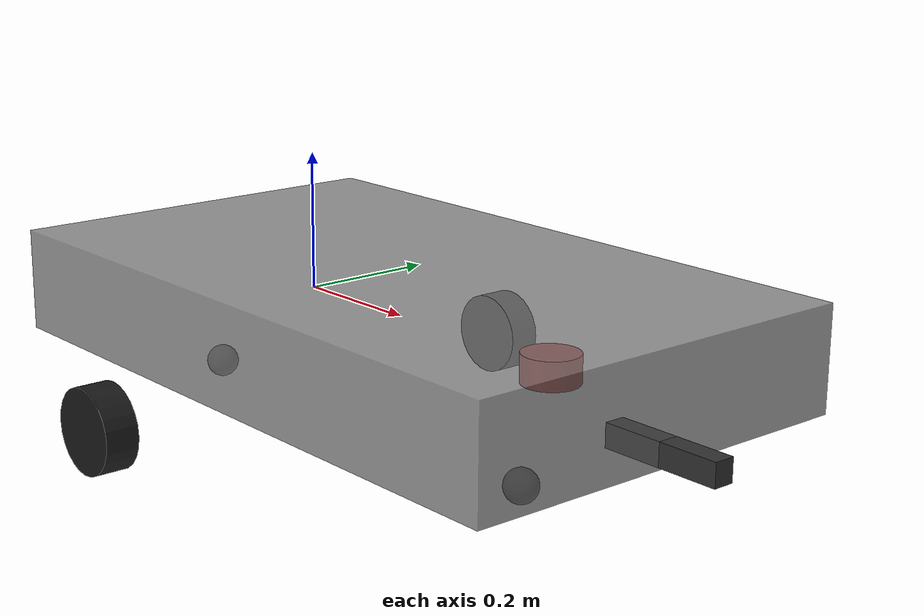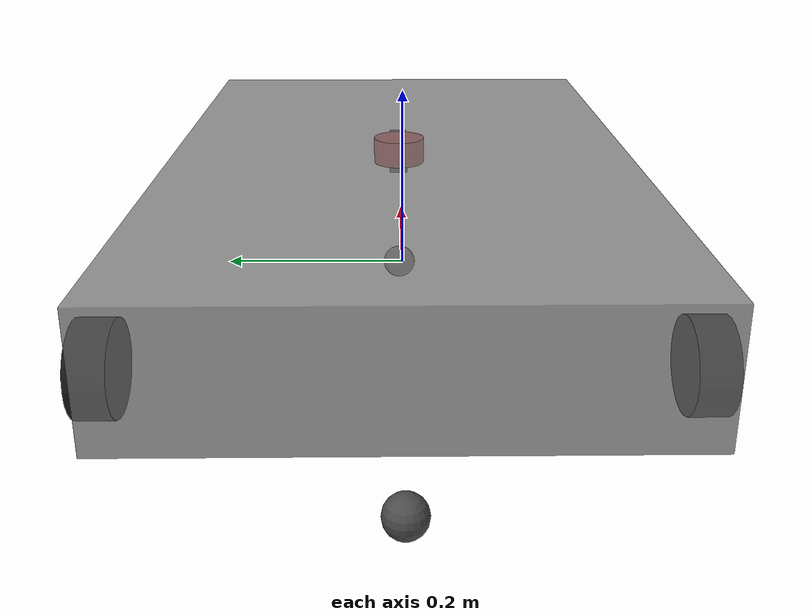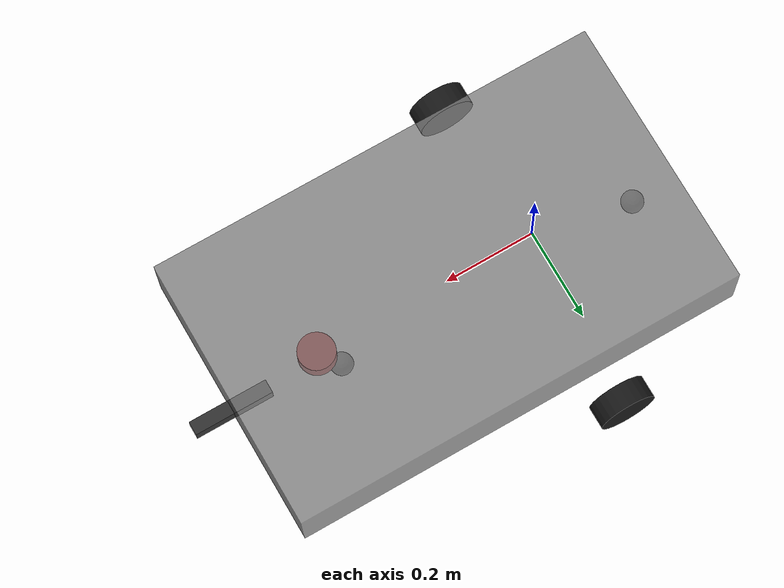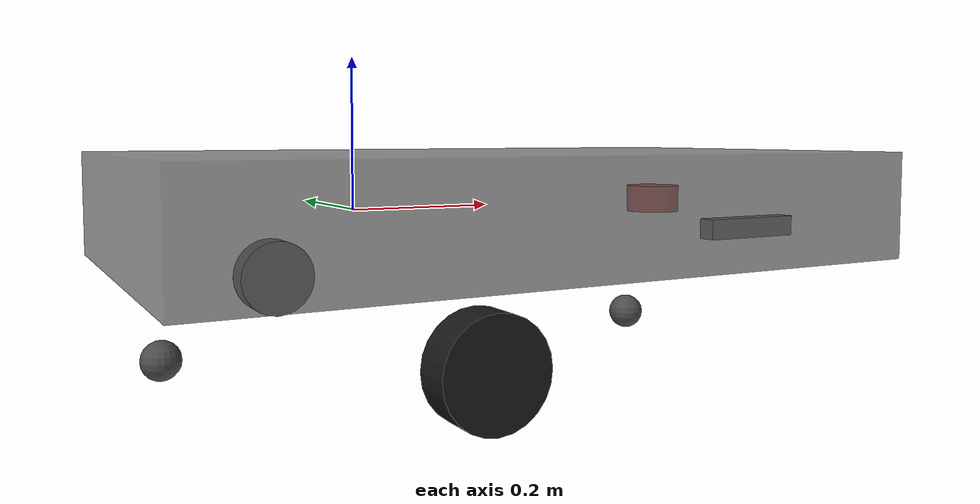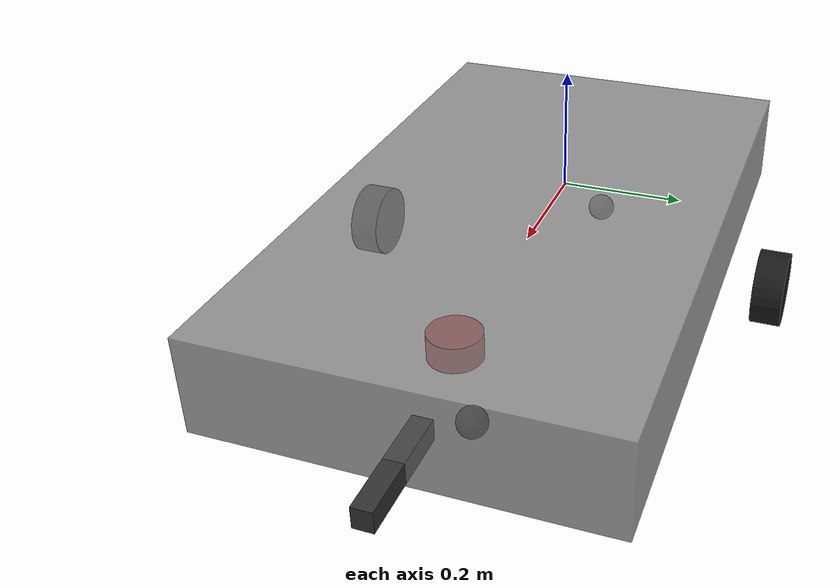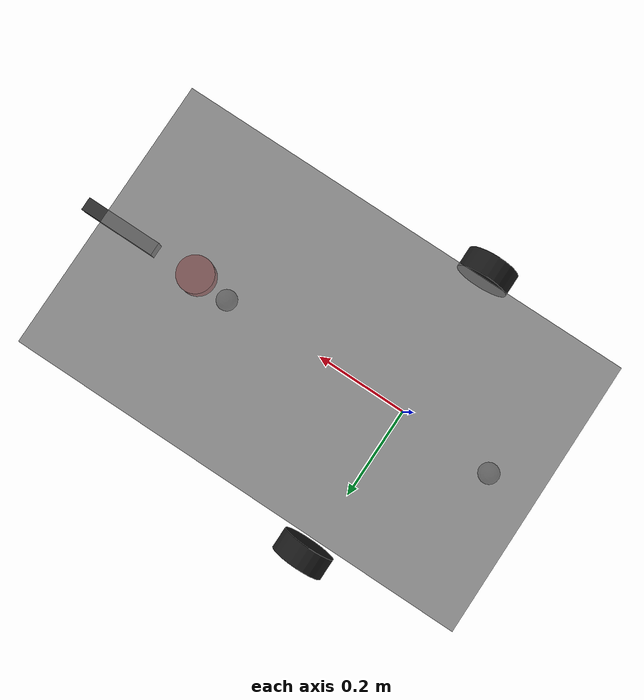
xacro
<?xml version="1.0"?>
<robot xmlns:xacro="http://www.ros.org/wiki/xacro" name="agv">

  <!-- Measured parameters (defaults from robot_params.yaml, 2026-03-18) -->
  <xacro:arg name="wheel_radius"  default="0.0625"/>
  <xacro:arg name="left_wheel_y"  default="0.3675"/>
  <xacro:arg name="right_wheel_y" default="-0.3675"/>
  <xacro:arg name="wheel_z"       default="-0.1375"/>
  <xacro:arg name="wheel_width"   default="0.05"/>

  <!-- Include components -->
  <xacro:include filename="$(find agv_sim_description)/urdf/agv_base_sim.xacro"/>
  <xacro:include filename="$(find agv_sim_description)/urdf/wheel_sim.xacro"/>
  <xacro:include filename="$(find agv_sim_description)/urdf/sensors_sim.xacro"/>

  <!-- Left wheel -->
  <xacro:wheel
    name="left"
    x="0"
    y="$(arg left_wheel_y)"
    z="$(arg wheel_z)"
    radius="$(arg wheel_radius)"
    width="$(arg wheel_width)"/>

  <!-- Right wheel -->
  <xacro:wheel
    name="right"
    x="0"
    y="$(arg right_wheel_y)"
    z="$(arg wheel_z)"
    radius="$(arg wheel_radius)"
    width="$(arg wheel_width)"/>

  <!--  Gz Harmonic Diff-Drive Plugin                         -->
  <gazebo>
    <plugin filename="gz-sim-diff-drive-system" name="gz::sim::systems::DiffDrive">
      <!-- Joints -->
      <left_joint>left_wheel_joint</left_joint>
      <right_joint>right_wheel_joint</right_joint>

      <!-- Kinematics -->
      <wheel_separation>0.735</wheel_separation>
      <wheel_radius>0.0625</wheel_radius>

      <!-- Topics (Gz Transport — bridged to ROS via ros_gz_bridge) -->
      <topic>/agv/shaped_cmd_vel</topic>
      <odom_topic>/agv/wheel_odom</odom_topic>
      <tf_topic>/agv/tf</tf_topic>

      <!-- Frames -->
      <frame_id>odom</frame_id>
      <child_frame_id>base_link</child_frame_id>

      <!-- Rate -->
      <odom_publish_frequency>50</odom_publish_frequency>
    </plugin>
  </gazebo>

  <!--  Joint State Publisher (for wheel TF via robot_state_publisher) -->
  <gazebo>
    <plugin filename="gz-sim-joint-state-publisher-system" name="gz::sim::systems::JointStatePublisher">
      <topic>/agv/joint_states</topic>
    </plugin>
  </gazebo>

</robot>

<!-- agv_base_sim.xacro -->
<robot xmlns:xacro="http://www.ros.org/wiki/xacro">

  <!-- Chassis visual approximation — dimensions from robot_params.yaml -->
  <xacro:property name="chassis_length" value="1.0"/>
  <xacro:property name="chassis_width" value="0.6"/>
  <xacro:property name="chassis_height" value="0.15"/>
  <xacro:property name="chassis_mass" value="30.0"/>
  <xacro:property name="chassis_visual_x_offset" value="0.2"/>

  <link name="base_link">
    <visual>
      <origin xyz="${chassis_visual_x_offset} 0 0" rpy="0 0 0"/>
      <geometry>
        <box size="${chassis_length} ${chassis_width} ${chassis_height}"/>
      </geometry>
      <material name="chassis_grey">
        <color rgba="0.5 0.5 0.5 0.8"/>
      </material>
    </visual>
    <collision>
      <origin xyz="${chassis_visual_x_offset} 0 0" rpy="0 0 0"/>
      <geometry>
        <box size="${chassis_length} ${chassis_width} ${chassis_height}"/>
      </geometry>
    </collision>
    <inertial>
      <mass value="${chassis_mass}"/>
      <origin xyz="${chassis_visual_x_offset} 0 0"/>
      <inertia ixx="${(1.0/12.0)*chassis_mass*(chassis_width*chassis_width + chassis_height*chassis_height)}"
               ixy="0" ixz="0"
               iyy="${(1.0/12.0)*chassis_mass*(chassis_length*chassis_length + chassis_height*chassis_height)}"
               iyz="0"
               izz="${(1.0/12.0)*chassis_mass*(chassis_length*chassis_length + chassis_width*chassis_width)}"/>
    </inertial>
  </link>

  <!-- Base footprint at ground level (for Nav2 costmap) -->
  <link name="base_footprint"/>

  <joint name="base_footprint_joint" type="fixed">
    <parent link="base_link"/>
    <child link="base_footprint"/>
    <origin xyz="0 0 -0.200" rpy="0 0 0"/>
  </joint>

  <!-- Front caster for stability in simulation -->
  <link name="front_caster">
    <visual>
      <geometry>
        <sphere radius="0.025"/>
      </geometry>
      <material name="caster_grey">
        <color rgba="0.3 0.3 0.3 1.0"/>
      </material>
    </visual>
    <collision>
      <geometry>
        <sphere radius="0.025"/>
      </geometry>
    </collision>
    <inertial>
      <mass value="0.5"/>
      <inertia ixx="0.0001" ixy="0" ixz="0" iyy="0.0001" iyz="0" izz="0.0001"/>
    </inertial>
  </link>

  <joint name="front_caster_joint" type="fixed">
    <parent link="base_link"/>
    <child link="front_caster"/>
    <origin xyz="0.45 0 -0.175" rpy="0 0 0"/>
  </joint>

  <!-- Rear caster for stability in simulation -->
  <link name="rear_caster">
    <visual>
      <geometry>
        <sphere radius="0.025"/>
      </geometry>
      <material name="caster_grey">
        <color rgba="0.3 0.3 0.3 1.0"/>
      </material>
    </visual>
    <collision>
      <geometry>
        <sphere radius="0.025"/>
      </geometry>
    </collision>
    <inertial>
      <mass value="0.5"/>
      <inertia ixx="0.0001" ixy="0" ixz="0" iyy="0.0001" iyz="0" izz="0.0001"/>
    </inertial>
  </link>

  <joint name="rear_caster_joint" type="fixed">
    <parent link="base_link"/>
    <child link="rear_caster"/>
    <origin xyz="-0.25 0 -0.175" rpy="0 0 0"/>
  </joint>

  <!-- Gz friction for casters (low friction to simulate free-rolling) -->
  <gazebo reference="front_caster">
    <mu1>0.001</mu1>
    <mu2>0.001</mu2>
    <visual>
      <material>
        <ambient>0.2 0.2 0.2 1</ambient>
        <diffuse>0.3 0.3 0.3 1</diffuse>
        <specular>0.15 0.15 0.15 1</specular>
        <pbr><metal><metalness>0.3</metalness><roughness>0.6</roughness></metal></pbr>
      </material>
    </visual>
  </gazebo>

  <gazebo reference="rear_caster">
    <mu1>0.001</mu1>
    <mu2>0.001</mu2>
    <visual>
      <material>
        <ambient>0.2 0.2 0.2 1</ambient>
        <diffuse>0.3 0.3 0.3 1</diffuse>
        <specular>0.15 0.15 0.15 1</specular>
        <pbr><metal><metalness>0.3</metalness><roughness>0.6</roughness></metal></pbr>
      </material>
    </visual>
  </gazebo>

  <gazebo reference="base_link">
    <visual>
      <material>
        <ambient>0.3 0.32 0.35 1</ambient>
        <diffuse>0.4 0.42 0.45 1</diffuse>
        <specular>0.3 0.3 0.3 1</specular>
        <pbr><metal><metalness>0.4</metalness><roughness>0.5</roughness></metal></pbr>
      </material>
    </visual>
  </gazebo>

</robot>

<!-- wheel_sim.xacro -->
<robot xmlns:xacro="http://www.ros.org/wiki/xacro">

  <xacro:macro name="wheel" params="name x y z radius width">
    <link name="${name}_wheel">
      <visual>
        <geometry>
          <cylinder radius="${radius}" length="${width}"/>
        </geometry>
        <material name="wheel_black">
          <color rgba="0.1 0.1 0.1 1.0"/>
        </material>
      </visual>
      <collision>
        <geometry>
          <cylinder radius="${radius}" length="${width}"/>
        </geometry>
      </collision>
      <inertial>
        <mass value="2.0"/>
        <inertia ixx="${(1.0/12.0)*2.0*(3.0*radius*radius + width*width)}"
                 ixy="0" ixz="0"
                 iyy="${(1.0/12.0)*2.0*(3.0*radius*radius + width*width)}"
                 iyz="0"
                 izz="${0.5*2.0*radius*radius}"/>
      </inertial>
    </link>

    <joint name="${name}_wheel_joint" type="continuous">
      <parent link="base_link"/>
      <child link="${name}_wheel"/>
      <origin xyz="${x} ${y} ${z}" rpy="${-pi/2} 0 0"/>
      <axis xyz="0 0 1"/>
    </joint>

    <gazebo reference="${name}_wheel">
      <mu1>1.0</mu1>
      <mu2>1.0</mu2>
      <kp>1000000.0</kp>
      <kd>100.0</kd>
    </gazebo>
  </xacro:macro>

</robot>

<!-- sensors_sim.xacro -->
<robot xmlns:xacro="http://www.ros.org/wiki/xacro">

  <!--  ZED 2i Stereo Camera — TF chain matching real ZED SDK -->

  <!-- ZED camera body link (175mm x 30mm x 33mm) -->
  <link name="zed_camera_link">
    <visual>
      <geometry>
        <box size="0.175 0.030 0.033"/>
      </geometry>
      <material name="zed_dark_grey">
        <color rgba="0.2 0.2 0.2 1.0"/>
      </material>
    </visual>
    <collision>
      <geometry>
        <box size="0.175 0.030 0.033"/>
      </geometry>
    </collision>
    <inertial>
      <mass value="0.16"/>
      <inertia ixx="0.00005" ixy="0" ixz="0" iyy="0.00005" iyz="0" izz="0.00005"/>
    </inertial>
  </link>

  <joint name="zed_camera_joint" type="fixed">
    <parent link="base_link"/>
    <child link="zed_camera_link"/>
    <origin xyz="0.7 0.0 -0.055" rpy="0 0 0"/>
  </joint>

  <!-- Optical center between lenses (identity transform from camera body) -->
  <link name="zed_camera_center">
    <inertial>
      <mass value="0.001"/>
      <inertia ixx="0.000001" ixy="0" ixz="0" iyy="0.000001" iyz="0" izz="0.000001"/>
    </inertial>
  </link>

  <joint name="zed_camera_center_joint" type="fixed">
    <parent link="zed_camera_link"/>
    <child link="zed_camera_center"/>
    <origin xyz="0 0 0" rpy="0 0 0"/>
  </joint>

  <!-- Left camera frame (+0.06m Y = half of 120mm baseline) -->
  <link name="zed_left_camera_frame">
    <inertial>
      <mass value="0.001"/>
      <inertia ixx="0.000001" ixy="0" ixz="0" iyy="0.000001" iyz="0" izz="0.000001"/>
    </inertial>
  </link>

  <joint name="zed_left_camera_joint" type="fixed">
    <parent link="zed_camera_link"/>
    <child link="zed_left_camera_frame"/>
    <origin xyz="0.0 0.06 0.0" rpy="0 0 0"/>
  </joint>

  <!-- Left camera optical frame (rotated for optical convention: Z forward, X right, Y down) -->
  <link name="zed_left_camera_optical_frame">
    <inertial>
      <mass value="0.001"/>
      <inertia ixx="0.000001" ixy="0" ixz="0" iyy="0.000001" iyz="0" izz="0.000001"/>
    </inertial>
  </link>

  <joint name="zed_left_camera_optical_joint" type="fixed">
    <parent link="zed_left_camera_frame"/>
    <child link="zed_left_camera_optical_frame"/>
    <!-- Rotate -90 deg around Z then -90 deg around X for optical convention -->
    <origin xyz="0 0 0" rpy="${-pi/2} 0 ${-pi/2}"/>
  </joint>

  <!-- Right camera frame (-0.06m Y = half of 120mm baseline) -->
  <link name="zed_right_camera_frame">
    <inertial>
      <mass value="0.001"/>
      <inertia ixx="0.000001" ixy="0" ixz="0" iyy="0.000001" iyz="0" izz="0.000001"/>
    </inertial>
  </link>

  <joint name="zed_right_camera_joint" type="fixed">
    <parent link="zed_camera_link"/>
    <child link="zed_right_camera_frame"/>
    <origin xyz="0.0 -0.06 0.0" rpy="0 0 0"/>
  </joint>

  <!-- Right camera optical frame -->
  <link name="zed_right_camera_optical_frame">
    <inertial>
      <mass value="0.001"/>
      <inertia ixx="0.000001" ixy="0" ixz="0" iyy="0.000001" iyz="0" izz="0.000001"/>
    </inertial>
  </link>

  <joint name="zed_right_camera_optical_joint" type="fixed">
    <parent link="zed_right_camera_frame"/>
    <child link="zed_right_camera_optical_frame"/>
    <origin xyz="0 0 0" rpy="${-pi/2} 0 ${-pi/2}"/>
  </joint>

  <!-- IMU link (co-located with camera body) -->
  <link name="imu_link">
    <visual>
      <geometry>
        <box size="0.02 0.02 0.02"/>
      </geometry>
      <material name="imu_blue">
        <color rgba="0.0 0.0 0.8 1.0"/>
      </material>
    </visual>
    <inertial>
      <mass value="0.01"/>
      <inertia ixx="0.000001" ixy="0" ixz="0" iyy="0.000001" iyz="0" izz="0.000001"/>
    </inertial>
  </link>

  <joint name="imu_joint" type="fixed">
    <parent link="zed_camera_link"/>
    <child link="imu_link"/>
    <origin xyz="0 0 0" rpy="0 0 0"/>
  </joint>

  <!--  Left Camera Sensor (RGB + Depth + PointCloud)          -->
  <!--  Gz Transport topics bridged to ROS via ros_gz_bridge   -->
  <gazebo reference="zed_left_camera_frame">
    <sensor type="depth_camera" name="zed_left_depth">
      <always_on>true</always_on>
      <update_rate>30</update_rate>
      <topic>/zed_left</topic>
      <gz_frame_id>zed_left_camera_optical_frame</gz_frame_id>
      <camera>
        <horizontal_fov>1.9199</horizontal_fov>
        <image>
          <width>1280</width>
          <height>720</height>
          <format>R8G8B8</format>
        </image>
        <clip>
          <near>0.3</near>
          <far>20.0</far>
        </clip>
        <noise>
          <type>gaussian</type>
          <mean>0.0</mean>
          <stddev>0.007</stddev>
        </noise>
      </camera>
    </sensor>
  </gazebo>

  <!--  Right Camera Sensor (RGB only)                         -->
  <gazebo reference="zed_right_camera_frame">
    <sensor type="camera" name="zed_right_camera">
      <always_on>true</always_on>
      <update_rate>30</update_rate>
      <topic>/zed_right</topic>
      <gz_frame_id>zed_right_camera_optical_frame</gz_frame_id>
      <camera>
        <horizontal_fov>1.9199</horizontal_fov>
        <image>
          <width>1280</width>
          <height>720</height>
          <format>R8G8B8</format>
        </image>
        <clip>
          <near>0.3</near>
          <far>20.0</far>
        </clip>
        <noise>
          <type>gaussian</type>
          <mean>0.0</mean>
          <stddev>0.007</stddev>
        </noise>
      </camera>
    </sensor>
  </gazebo>

  <!--  ZED 2i IMU — 400Hz, datasheet noise values             -->
  <gazebo reference="imu_link">
    <sensor name="zed_imu" type="imu">
      <always_on>true</always_on>
      <update_rate>400</update_rate>
      <topic>/zed_imu</topic>
      <gz_frame_id>imu_link</gz_frame_id>
      <imu>
        <angular_velocity>
          <x><noise type="gaussian"><mean>0.0</mean><stddev>0.00279</stddev></noise></x>
          <y><noise type="gaussian"><mean>0.0</mean><stddev>0.00279</stddev></noise></y>
          <z><noise type="gaussian"><mean>0.0</mean><stddev>0.00279</stddev></noise></z>
        </angular_velocity>
        <linear_acceleration>
          <x><noise type="gaussian"><mean>0.0</mean><stddev>0.0314</stddev></noise></x>
          <y><noise type="gaussian"><mean>0.0</mean><stddev>0.0314</stddev></noise></y>
          <z><noise type="gaussian"><mean>0.0</mean><stddev>0.0314</stddev></noise></z>
        </linear_acceleration>
      </imu>
    </sensor>
  </gazebo>

  <!--  2D Lidar (supplementary sensor)                        -->
  <link name="laser_frame">
    <visual>
      <geometry>
        <cylinder radius="0.04" length="0.04"/>
      </geometry>
      <material name="lidar_red">
        <color rgba="0.8 0.0 0.0 1.0"/>
      </material>
    </visual>
    <collision>
      <geometry>
        <cylinder radius="0.04" length="0.04"/>
      </geometry>
    </collision>
    <inertial>
      <mass value="0.1"/>
      <inertia ixx="0.00005" ixy="0" ixz="0" iyy="0.00005" iyz="0" izz="0.00005"/>
    </inertial>
  </link>

  <joint name="laser_joint" type="fixed">
    <parent link="base_link"/>
    <child link="laser_frame"/>
    <origin xyz="0.5 0.0 0.0" rpy="0 0 0"/>
  </joint>

  <gazebo reference="laser_frame">
    <sensor name="lidar_sensor" type="gpu_lidar">
      <always_on>true</always_on>
      <visualize>false</visualize>
      <update_rate>10</update_rate>
      <topic>/lidar</topic>
      <gz_frame_id>laser_frame</gz_frame_id>
      <lidar>
        <scan>
          <horizontal>
            <samples>720</samples>
            <resolution>1</resolution>
            <min_angle>-3.14159265359</min_angle>
            <max_angle>3.14159265359</max_angle>
          </horizontal>
        </scan>
        <range>
          <min>0.1</min>
          <max>10.0</max>
          <resolution>0.01</resolution>
        </range>
        <noise>
          <type>gaussian</type>
          <mean>0.0</mean>
          <stddev>0.005</stddev>
        </noise>
      </lidar>
    </sensor>
  </gazebo>

</robot>
